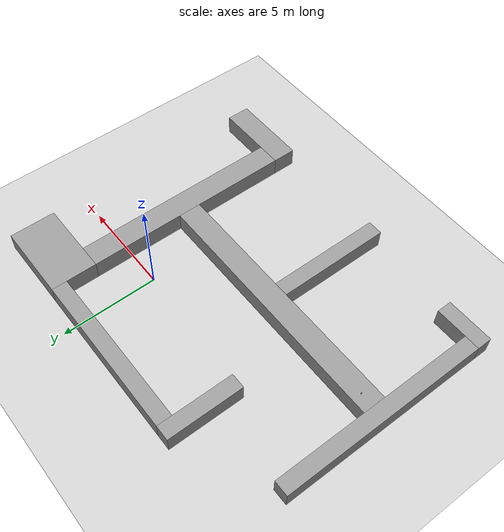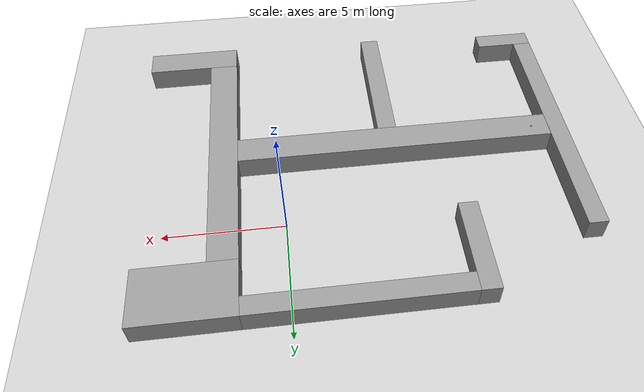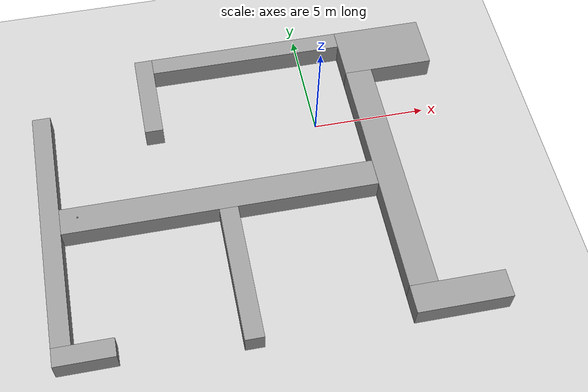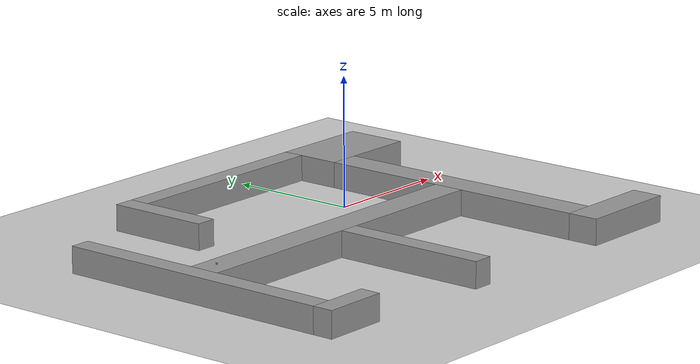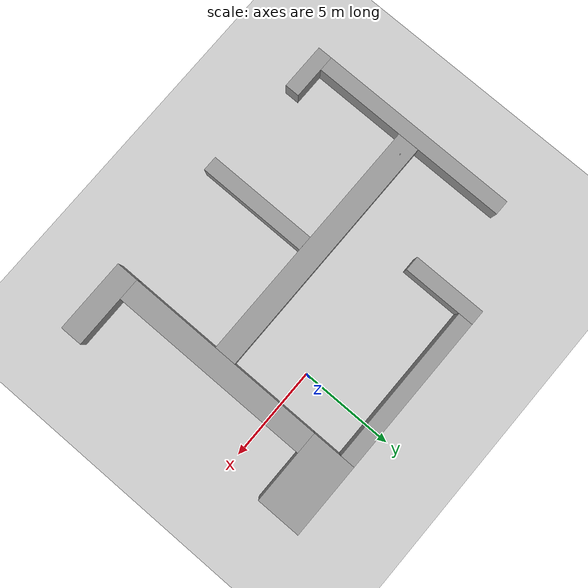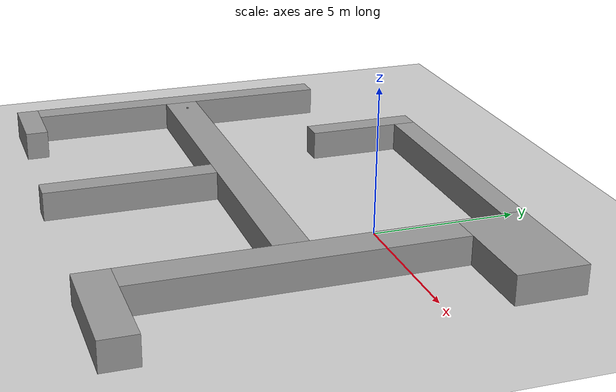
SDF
<sdf version="1.6">
 <world name="default">
  <light name="sun" type="directional">
   <pose>0 0 10 0 -0 0</pose>
   <diffuse>0.8 0.8 0.8 1</diffuse>
   <specular>0.2 0.2 0.2 1</specular>
   <attenuation>
    <range>1000</range>
    <constant>0.9</constant>
    <linear>0.01</linear>
    <quadratic>0.001</quadratic>
   </attenuation>
   <direction>-0.5 0.1 -0.9</direction>
  </light>
  <model name="ground_plane">
   <static>1</static>
   <link name="link">
    <collision name="collision">
     <geometry><plane><normal>0 0 1</normal><size>100 100</size></plane></geometry>
     <surface><friction><ode><mu>100</mu><mu2>50</mu2></ode></friction></surface>
    </collision>
    <visual name="visual">
     <cast_shadows>0</cast_shadows>
     <geometry><plane><normal>0 0 1</normal><size>100 100</size></plane></geometry>
     <material>
      <script><uri>file://media/materials/scripts/gazebo.material</uri><name>Gazebo/Grey</name></script>
     </material>
    </visual>
   </link>
  </model>
  <gravity>0 0 -9.8</gravity>
  <magnetic_field>6e-06 2.3e-05 -4.2e-05</magnetic_field>
  <atmosphere type="adiabatic"/>
  <physics name="default_physics" default="0" type="ode">
   <max_step_size>0.001</max_step_size>
   <real_time_factor>1</real_time_factor>
   <real_time_update_rate>1000</real_time_update_rate>
  </physics>
  <scene><ambient>0.4 0.4 0.4 1</ambient><background>0.7 0.7 0.7 1</background><shadows>1</shadows></scene>
  <spherical_coordinates>
   <surface_model>EARTH_WGS84</surface_model>
   <latitude_deg>0</latitude_deg>
   <longitude_deg>0</longitude_deg>
   <elevation>0</elevation>
   <heading_deg>0</heading_deg>
  </spherical_coordinates>
  <model name="mini_box_white">
   <link name="link_0">
    <inertial>
     <mass>1</mass>
     <inertia>
      <ixx>0.166667</ixx>
      <ixy>0</ixy>
      <ixz>0</ixz>
      <iyy>0.166667</iyy>
      <iyz>0</iyz>
      <izz>0.166667</izz>
     </inertia>
    </inertial>
    <visual name="visual">
     <geometry><box><size>0.05 0.05 0.05</size></box></geometry>
     <material>
      <lighting>1</lighting>
      <script><uri>file://media/materials/scripts/gazebo.material</uri><name>Gazebo/Grey</name></script>
      <shader type="pixel"><normal_map>__default__</normal_map></shader>
      <ambient>1 1 1 1</ambient>
      <diffuse>1 1 1 1</diffuse>
      <specular>1 1 1 1</specular>
      <emissive>1 1 1 1</emissive>
     </material>
    </visual>
    <collision name="collision">
     <geometry><box><size>0.05 0.05 0.05</size></box></geometry>
     <surface>
      <friction>
       <ode><mu>1</mu><mu2>1</mu2><fdir1>0 0 0</fdir1><slip1>0</slip1><slip2>0</slip2></ode>
       <torsional>
        <coefficient>1</coefficient>
        <patch_radius>0</patch_radius>
        <surface_radius>0</surface_radius>
        <use_patch_radius>1</use_patch_radius>
        <ode><slip>0</slip></ode>
       </torsional>
      </friction>
      <bounce><restitution_coefficient>0</restitution_coefficient><threshold>1e+06</threshold></bounce>
      <contact>
       <collide_without_contact>0</collide_without_contact>
       <collide_without_contact_bitmask>1</collide_without_contact_bitmask>
       <collide_bitmask>1</collide_bitmask>
       <ode>
        <soft_cfm>0</soft_cfm>
        <soft_erp>0.2</soft_erp>
        <kp>1e+13</kp>
        <kd>1</kd>
        <max_vel>0.01</max_vel>
        <min_depth>0</min_depth>
       </ode>
       <bullet>
        <split_impulse>1</split_impulse>
        <split_impulse_penetration_threshold>-0.01</split_impulse_penetration_threshold>
        <soft_cfm>0</soft_cfm>
        <soft_erp>0.2</soft_erp>
        <kp>1e+13</kp>
        <kd>1</kd>
       </bullet>
      </contact>
     </surface>
    </collision>
   </link>
   <static>0</static>
   <pose>-10.9334 -3.39607 1.02501 -1e-06 -0.000529 0.068004</pose>
  </model>
  <model name="path">
   <link name="Wall_18">
    <pose>-12.5035 0.003409 0 0 -0 1.5708</pose>
    <inertial>
     <mass>1</mass>
     <inertia><ixx>1</ixx><ixy>0</ixy><ixz>0</ixz><iyy>1</iyy><iyz>0</iyz><izz>1</izz></inertia>
    </inertial>
    <visual name="Wall_18_Visual">
     <pose>0 0 0.5 0 -0 0</pose>
     <geometry><box><size>11 1.2 1</size></box></geometry>
     <material>
      <script><uri>file://media/materials/scripts/gazebo.material</uri><name>Gazebo/Grey</name></script>
      <ambient>0 0 0 1</ambient>
      <shader type="pixel"><normal_map>__default__</normal_map></shader>
      <diffuse>0 0 0 1</diffuse>
      <specular>0 0 0 1</specular>
      <emissive>0 0 0 1</emissive>
     </material>
     <meta><layer>0</layer></meta>
    </visual>
    <collision name="Wall_18_Collision">
     <pose>0 0 0.5 0 -0 0</pose>
     <geometry><box><size>11 1.2 1</size></box></geometry>
     <surface>
      <friction>
       <ode><mu>1</mu><mu2>1</mu2><fdir1>0 0 0</fdir1><slip1>0</slip1><slip2>0</slip2></ode>
       <torsional>
        <coefficient>1</coefficient>
        <patch_radius>0</patch_radius>
        <surface_radius>0</surface_radius>
        <use_patch_radius>1</use_patch_radius>
        <ode><slip>0</slip></ode>
       </torsional>
      </friction>
      <bounce><restitution_coefficient>0</restitution_coefficient><threshold>1e+06</threshold></bounce>
      <contact>
       <collide_without_contact>0</collide_without_contact>
       <collide_without_contact_bitmask>1</collide_without_contact_bitmask>
       <collide_bitmask>1</collide_bitmask>
       <ode>
        <soft_cfm>0</soft_cfm>
        <soft_erp>0.2</soft_erp>
        <kp>1e+13</kp>
        <kd>1</kd>
        <max_vel>0.01</max_vel>
        <min_depth>0</min_depth>
       </ode>
       <bullet>
        <split_impulse>1</split_impulse>
        <split_impulse_penetration_threshold>-0.01</split_impulse_penetration_threshold>
        <soft_cfm>0</soft_cfm>
        <soft_erp>0.2</soft_erp>
        <kp>1e+13</kp>
        <kd>1</kd>
       </bullet>
      </contact>
     </surface>
    </collision>
   </link>
   <link name="Wall_20">
    <pose>-5.15319 -0.016904 0 0 0 -0.000489</pose>
    <inertial>
     <mass>1</mass>
     <inertia><ixx>1</ixx><ixy>0</ixy><ixz>0</ixz><iyy>1</iyy><iyz>0</iyz><izz>1</izz></inertia>
    </inertial>
    <visual name="Wall_20_Visual">
     <pose>0 0 0.5 0 -0 0</pose>
     <geometry><box><size>13.5 1.2 1</size></box></geometry>
     <material>
      <script><uri>file://media/materials/scripts/gazebo.material</uri><name>Gazebo/Grey</name></script>
      <ambient>0 0 0 1</ambient>
      <shader type="pixel"><normal_map>__default__</normal_map></shader>
      <diffuse>0 0 0 1</diffuse>
      <specular>0 0 0 1</specular>
      <emissive>0 0 0 1</emissive>
     </material>
     <meta><layer>0</layer></meta>
    </visual>
    <collision name="Wall_20_Collision">
     <pose>0 0 0.5 0 -0 0</pose>
     <geometry><box><size>13.5 1.2 1</size></box></geometry>
     <surface>
      <friction>
       <ode><mu>1</mu><mu2>1</mu2><fdir1>0 0 0</fdir1><slip1>0</slip1><slip2>0</slip2></ode>
       <torsional>
        <coefficient>1</coefficient>
        <patch_radius>0</patch_radius>
        <surface_radius>0</surface_radius>
        <use_patch_radius>1</use_patch_radius>
        <ode><slip>0</slip></ode>
       </torsional>
      </friction>
      <bounce><restitution_coefficient>0</restitution_coefficient><threshold>1e+06</threshold></bounce>
      <contact>
       <collide_without_contact>0</collide_without_contact>
       <collide_without_contact_bitmask>1</collide_without_contact_bitmask>
       <collide_bitmask>1</collide_bitmask>
       <ode>
        <soft_cfm>0</soft_cfm>
        <soft_erp>0.2</soft_erp>
        <kp>1e+13</kp>
        <kd>1</kd>
        <max_vel>0.01</max_vel>
        <min_depth>0</min_depth>
       </ode>
       <bullet>
        <split_impulse>1</split_impulse>
        <split_impulse_penetration_threshold>-0.01</split_impulse_penetration_threshold>
        <soft_cfm>0</soft_cfm>
        <soft_erp>0.2</soft_erp>
        <kp>1e+13</kp>
        <kd>1</kd>
       </bullet>
      </contact>
     </surface>
    </collision>
   </link>
   <link name="Wall_21">
    <pose>1.99706 0.024718 0 0 -0 1.57072</pose>
    <inertial>
     <mass>1</mass>
     <inertia><ixx>1</ixx><ixy>0</ixy><ixz>0</ixz><iyy>1</iyy><iyz>0</iyz><izz>1</izz></inertia>
    </inertial>
    <visual name="Wall_21_Visual">
     <pose>0 0 0.5 0 -0 0</pose>
     <geometry><box><size>11 0.8 1</size></box></geometry>
     <material>
      <script><uri>file://media/materials/scripts/gazebo.material</uri><name>Gazebo/Grey</name></script>
      <ambient>0 0 0 1</ambient>
      <shader type="pixel"><normal_map>__default__</normal_map></shader>
      <diffuse>0 0 0 1</diffuse>
      <specular>0 0 0 1</specular>
      <emissive>0 0 0 1</emissive>
     </material>
     <meta><layer>0</layer></meta>
    </visual>
    <collision name="Wall_21_Collision">
     <pose>0 0 0.5 0 -0 0</pose>
     <geometry><box><size>11 0.8 1</size></box></geometry>
     <surface>
      <friction>
       <ode><mu>1</mu><mu2>1</mu2><fdir1>0 0 0</fdir1><slip1>0</slip1><slip2>0</slip2></ode>
       <torsional>
        <coefficient>1</coefficient>
        <patch_radius>0</patch_radius>
        <surface_radius>0</surface_radius>
        <use_patch_radius>1</use_patch_radius>
        <ode><slip>0</slip></ode>
       </torsional>
      </friction>
      <bounce><restitution_coefficient>0</restitution_coefficient><threshold>1e+06</threshold></bounce>
      <contact>
       <collide_without_contact>0</collide_without_contact>
       <collide_without_contact_bitmask>1</collide_without_contact_bitmask>
       <collide_bitmask>1</collide_bitmask>
       <ode>
        <soft_cfm>0</soft_cfm>
        <soft_erp>0.2</soft_erp>
        <kp>1e+13</kp>
        <kd>1</kd>
        <max_vel>0.01</max_vel>
        <min_depth>0</min_depth>
       </ode>
       <bullet>
        <split_impulse>1</split_impulse>
        <split_impulse_penetration_threshold>-0.01</split_impulse_penetration_threshold>
        <soft_cfm>0</soft_cfm>
        <soft_erp>0.2</soft_erp>
        <kp>1e+13</kp>
        <kd>1</kd>
       </bullet>
      </contact>
     </surface>
    </collision>
   </link>
   <link name="Wall_25">
    <pose>-5.42538 3.58343 0 0 -0 1.5708</pose>
    <inertial>
     <mass>1</mass>
     <inertia><ixx>1</ixx><ixy>0</ixy><ixz>0</ixz><iyy>1</iyy><iyz>0</iyz><izz>1</izz></inertia>
    </inertial>
    <visual name="Wall_25_Visual">
     <pose>0 0 0.5 0 -0 0</pose>
     <geometry><box><size>6 0.8 1</size></box></geometry>
     <material>
      <script><uri>file://media/materials/scripts/gazebo.material</uri><name>Gazebo/Grey</name></script>
      <ambient>0 0 0 1</ambient>
      <shader type="pixel"><normal_map>__default__</normal_map></shader>
      <diffuse>0 0 0 1</diffuse>
      <specular>0 0 0 1</specular>
      <emissive>0 0 0 1</emissive>
     </material>
     <meta><layer>0</layer></meta>
    </visual>
    <collision name="Wall_25_Collision">
     <pose>0 0 0.5 0 -0 0</pose>
     <geometry><box><size>6 0.8 1</size></box></geometry>
     <surface>
      <friction>
       <ode><mu>1</mu><mu2>1</mu2><fdir1>0 0 0</fdir1><slip1>0</slip1><slip2>0</slip2></ode>
       <torsional>
        <coefficient>1</coefficient>
        <patch_radius>0</patch_radius>
        <surface_radius>0</surface_radius>
        <use_patch_radius>1</use_patch_radius>
        <ode><slip>0</slip></ode>
       </torsional>
      </friction>
      <bounce><restitution_coefficient>0</restitution_coefficient><threshold>1e+06</threshold></bounce>
      <contact>
       <collide_without_contact>0</collide_without_contact>
       <collide_without_contact_bitmask>1</collide_without_contact_bitmask>
       <collide_bitmask>1</collide_bitmask>
       <ode>
        <soft_cfm>0</soft_cfm>
        <soft_erp>0.2</soft_erp>
        <kp>1e+13</kp>
        <kd>1</kd>
        <max_vel>0.01</max_vel>
        <min_depth>0</min_depth>
       </ode>
       <bullet>
        <split_impulse>1</split_impulse>
        <split_impulse_penetration_threshold>-0.01</split_impulse_penetration_threshold>
        <soft_cfm>0</soft_cfm>
        <soft_erp>0.2</soft_erp>
        <kp>1e+13</kp>
        <kd>1</kd>
       </bullet>
      </contact>
     </surface>
    </collision>
   </link>
   <link name="Wall_27">
    <pose>-7.5785 -7.49658 0 0 -0 0</pose>
    <inertial>
     <mass>1</mass>
     <inertia><ixx>1</ixx><ixy>0</ixy><ixz>0</ixz><iyy>1</iyy><iyz>0</iyz><izz>1</izz></inertia>
    </inertial>
    <visual name="Wall_27_Visual">
     <pose>0 0 0.5 0 -0 0</pose>
     <geometry><box><size>8.65 0.8 1</size></box></geometry>
     <material>
      <script><uri>file://media/materials/scripts/gazebo.material</uri><name>Gazebo/Grey</name></script>
      <ambient>0 0 0 1</ambient>
      <shader type="pixel"><normal_map>__default__</normal_map></shader>
      <diffuse>0 0 0 1</diffuse>
      <specular>0 0 0 1</specular>
      <emissive>0 0 0 1</emissive>
     </material>
     <meta><layer>0</layer></meta>
    </visual>
    <collision name="Wall_27_Collision">
     <pose>0 0 0.5 0 -0 0</pose>
     <geometry><box><size>8.65 0.8 1</size></box></geometry>
     <surface>
      <friction>
       <ode><mu>1</mu><mu2>1</mu2><fdir1>0 0 0</fdir1><slip1>0</slip1><slip2>0</slip2></ode>
       <torsional>
        <coefficient>1</coefficient>
        <patch_radius>0</patch_radius>
        <surface_radius>0</surface_radius>
        <use_patch_radius>1</use_patch_radius>
        <ode><slip>0</slip></ode>
       </torsional>
      </friction>
      <bounce><restitution_coefficient>0</restitution_coefficient><threshold>1e+06</threshold></bounce>
      <contact>
       <collide_without_contact>0</collide_without_contact>
       <collide_without_contact_bitmask>1</collide_without_contact_bitmask>
       <collide_bitmask>1</collide_bitmask>
       <ode>
        <soft_cfm>0</soft_cfm>
        <soft_erp>0.2</soft_erp>
        <kp>1e+13</kp>
        <kd>1</kd>
        <max_vel>0.01</max_vel>
        <min_depth>0</min_depth>
       </ode>
       <bullet>
        <split_impulse>1</split_impulse>
        <split_impulse_penetration_threshold>-0.01</split_impulse_penetration_threshold>
        <soft_cfm>0</soft_cfm>
        <soft_erp>0.2</soft_erp>
        <kp>1e+13</kp>
        <kd>1</kd>
       </bullet>
      </contact>
     </surface>
    </collision>
   </link>
   <link name="Wall_31">
    <pose>-2.85351 -5.89658 0 0 0 -1.57079</pose>
    <inertial>
     <mass>1</mass>
     <inertia><ixx>1</ixx><ixy>0</ixy><ixz>0</ixz><iyy>1</iyy><iyz>0</iyz><izz>1</izz></inertia>
    </inertial>
    <visual name="Wall_31_Visual">
     <pose>0 0 0.5 0 -0 0</pose>
     <geometry><box><size>4 0.8 1</size></box></geometry>
     <material>
      <script><uri>file://media/materials/scripts/gazebo.material</uri><name>Gazebo/Grey</name></script>
      <ambient>0 0 0 1</ambient>
      <shader type="pixel"><normal_map>__default__</normal_map></shader>
      <diffuse>0 0 0 1</diffuse>
      <specular>0 0 0 1</specular>
      <emissive>0 0 0 1</emissive>
     </material>
     <meta><layer>0</layer></meta>
    </visual>
    <collision name="Wall_31_Collision">
     <pose>0 0 0.5 0 -0 0</pose>
     <geometry><box><size>4 0.8 1</size></box></geometry>
     <surface>
      <friction>
       <ode><mu>1</mu><mu2>1</mu2><fdir1>0 0 0</fdir1><slip1>0</slip1><slip2>0</slip2></ode>
       <torsional>
        <coefficient>1</coefficient>
        <patch_radius>0</patch_radius>
        <surface_radius>0</surface_radius>
        <use_patch_radius>1</use_patch_radius>
        <ode><slip>0</slip></ode>
       </torsional>
      </friction>
      <bounce><restitution_coefficient>0</restitution_coefficient><threshold>1e+06</threshold></bounce>
      <contact>
       <collide_without_contact>0</collide_without_contact>
       <collide_without_contact_bitmask>1</collide_without_contact_bitmask>
       <collide_bitmask>1</collide_bitmask>
       <ode>
        <soft_cfm>0</soft_cfm>
        <soft_erp>0.2</soft_erp>
        <kp>1e+13</kp>
        <kd>1</kd>
        <max_vel>0.01</max_vel>
        <min_depth>0</min_depth>
       </ode>
       <bullet>
        <split_impulse>1</split_impulse>
        <split_impulse_penetration_threshold>-0.01</split_impulse_penetration_threshold>
        <soft_cfm>0</soft_cfm>
        <soft_erp>0.2</soft_erp>
        <kp>1e+13</kp>
        <kd>1</kd>
       </bullet>
      </contact>
     </surface>
    </collision>
   </link>
   <link name="Wall_35">
    <pose>1.1473 5.91911 0 0 -0 0.000465</pose>
    <inertial>
     <mass>1</mass>
     <inertia><ixx>1</ixx><ixy>0</ixy><ixz>0</ixz><iyy>1</iyy><iyz>0</iyz><izz>1</izz></inertia>
    </inertial>
    <visual name="Wall_35_Visual">
     <pose>0 0 0.5 0 -0 0</pose>
     <geometry><box><size>2.5 0.79 1</size></box></geometry>
     <material>
      <script><uri>file://media/materials/scripts/gazebo.material</uri><name>Gazebo/Grey</name></script>
      <ambient>0 0 0 1</ambient>
      <shader type="pixel"><normal_map>__default__</normal_map></shader>
      <diffuse>0 0 0 1</diffuse>
      <specular>0 0 0 1</specular>
      <emissive>0 0 0 1</emissive>
     </material>
     <meta><layer>0</layer></meta>
    </visual>
    <collision name="Wall_35_Collision">
     <pose>0 0 0.5 0 -0 0</pose>
     <geometry><box><size>2.5 0.8 1</size></box></geometry>
     <surface>
      <friction>
       <ode><mu>1</mu><mu2>1</mu2><fdir1>0 0 0</fdir1><slip1>0</slip1><slip2>0</slip2></ode>
       <torsional>
        <coefficient>1</coefficient>
        <patch_radius>0</patch_radius>
        <surface_radius>0</surface_radius>
        <use_patch_radius>1</use_patch_radius>
        <ode><slip>0</slip></ode>
       </torsional>
      </friction>
      <bounce><restitution_coefficient>0</restitution_coefficient><threshold>1e+06</threshold></bounce>
      <contact>
       <collide_without_contact>0</collide_without_contact>
       <collide_without_contact_bitmask>1</collide_without_contact_bitmask>
       <collide_bitmask>1</collide_bitmask>
       <ode>
        <soft_cfm>0</soft_cfm>
        <soft_erp>0.2</soft_erp>
        <kp>1e+13</kp>
        <kd>1</kd>
        <max_vel>0.01</max_vel>
        <min_depth>0</min_depth>
       </ode>
       <bullet>
        <split_impulse>1</split_impulse>
        <split_impulse_penetration_threshold>-0.01</split_impulse_penetration_threshold>
        <soft_cfm>0</soft_cfm>
        <soft_erp>0.2</soft_erp>
        <kp>1e+13</kp>
        <kd>1</kd>
       </bullet>
      </contact>
     </surface>
    </collision>
   </link>
   <link name="Wall_44">
    <pose>-13.9035 6.10342 0 0 -0 3.14159</pose>
    <inertial>
     <mass>1</mass>
     <inertia><ixx>1</ixx><ixy>0</ixy><ixz>0</ixz><iyy>1</iyy><iyz>0</iyz><izz>1</izz></inertia>
    </inertial>
    <visual name="Wall_44_Visual">
     <pose>0 0 0.5 0 -0 0</pose>
     <geometry><box><size>4 1.2 1</size></box></geometry>
     <material>
      <script><uri>file://media/materials/scripts/gazebo.material</uri><name>Gazebo/Grey</name></script>
      <ambient>0 0 0 1</ambient>
      <shader type="pixel"><normal_map>__default__</normal_map></shader>
      <diffuse>0 0 0 1</diffuse>
      <specular>0 0 0 1</specular>
      <emissive>0 0 0 1</emissive>
     </material>
     <meta><layer>0</layer></meta>
    </visual>
    <collision name="Wall_44_Collision">
     <pose>0 0 0.5 0 -0 0</pose>
     <geometry><box><size>4 1.2 1</size></box></geometry>
     <surface>
      <friction>
       <ode><mu>1</mu><mu2>1</mu2><fdir1>0 0 0</fdir1><slip1>0</slip1><slip2>0</slip2></ode>
       <torsional>
        <coefficient>1</coefficient>
        <patch_radius>0</patch_radius>
        <surface_radius>0</surface_radius>
        <use_patch_radius>1</use_patch_radius>
        <ode><slip>0</slip></ode>
       </torsional>
      </friction>
      <bounce><restitution_coefficient>0</restitution_coefficient><threshold>1e+06</threshold></bounce>
      <contact>
       <collide_without_contact>0</collide_without_contact>
       <collide_without_contact_bitmask>1</collide_without_contact_bitmask>
       <collide_bitmask>1</collide_bitmask>
       <ode>
        <soft_cfm>0</soft_cfm>
        <soft_erp>0.2</soft_erp>
        <kp>1e+13</kp>
        <kd>1</kd>
        <max_vel>0.01</max_vel>
        <min_depth>0</min_depth>
       </ode>
       <bullet>
        <split_impulse>1</split_impulse>
        <split_impulse_penetration_threshold>-0.01</split_impulse_penetration_threshold>
        <soft_cfm>0</soft_cfm>
        <soft_erp>0.2</soft_erp>
        <kp>1e+13</kp>
        <kd>1</kd>
       </bullet>
      </contact>
     </surface>
    </collision>
   </link>
   <link name="Wall_62">
    <pose>-13.9035 -6.69658 0 0 -0 0</pose>
    <inertial>
     <mass>1</mass>
     <inertia><ixx>1</ixx><ixy>0</ixy><ixz>0</ixz><iyy>1</iyy><iyz>0</iyz><izz>1</izz></inertia>
    </inertial>
    <visual name="Wall_62_Visual">
     <pose>0 0 0.5 0 -0 0</pose>
     <geometry><box><size>4 2.4 1</size></box></geometry>
     <material>
      <script><uri>file://media/materials/scripts/gazebo.material</uri><name>Gazebo/Grey</name></script>
      <ambient>0 0 0 1</ambient>
      <shader type="pixel"><normal_map>__default__</normal_map></shader>
      <diffuse>0 0 0 1</diffuse>
      <specular>0 0 0 1</specular>
      <emissive>0 0 0 1</emissive>
     </material>
     <meta><layer>0</layer></meta>
    </visual>
    <collision name="Wall_62_Collision">
     <pose>0 0 0.5 0 -0 0</pose>
     <geometry><box><size>4 2.4 1</size></box></geometry>
     <surface>
      <friction>
       <ode><mu>1</mu><mu2>1</mu2><fdir1>0 0 0</fdir1><slip1>0</slip1><slip2>0</slip2></ode>
       <torsional>
        <coefficient>1</coefficient>
        <patch_radius>0</patch_radius>
        <surface_radius>0</surface_radius>
        <use_patch_radius>1</use_patch_radius>
        <ode><slip>0</slip></ode>
       </torsional>
      </friction>
      <bounce><restitution_coefficient>0</restitution_coefficient><threshold>1e+06</threshold></bounce>
      <contact>
       <collide_without_contact>0</collide_without_contact>
       <collide_without_contact_bitmask>1</collide_without_contact_bitmask>
       <collide_bitmask>1</collide_bitmask>
       <ode>
        <soft_cfm>0</soft_cfm>
        <soft_erp>0.2</soft_erp>
        <kp>1e+13</kp>
        <kd>1</kd>
        <max_vel>0.01</max_vel>
        <min_depth>0</min_depth>
       </ode>
       <bullet>
        <split_impulse>1</split_impulse>
        <split_impulse_penetration_threshold>-0.01</split_impulse_penetration_threshold>
        <soft_cfm>0</soft_cfm>
        <soft_erp>0.2</soft_erp>
        <kp>1e+13</kp>
        <kd>1</kd>
       </bullet>
      </contact>
     </surface>
    </collision>
   </link>
   <static>1</static>
   <pose>-10.0831 -3.498 0 0 -0 3.14159</pose>
  </model>
 </world>
</sdf>
